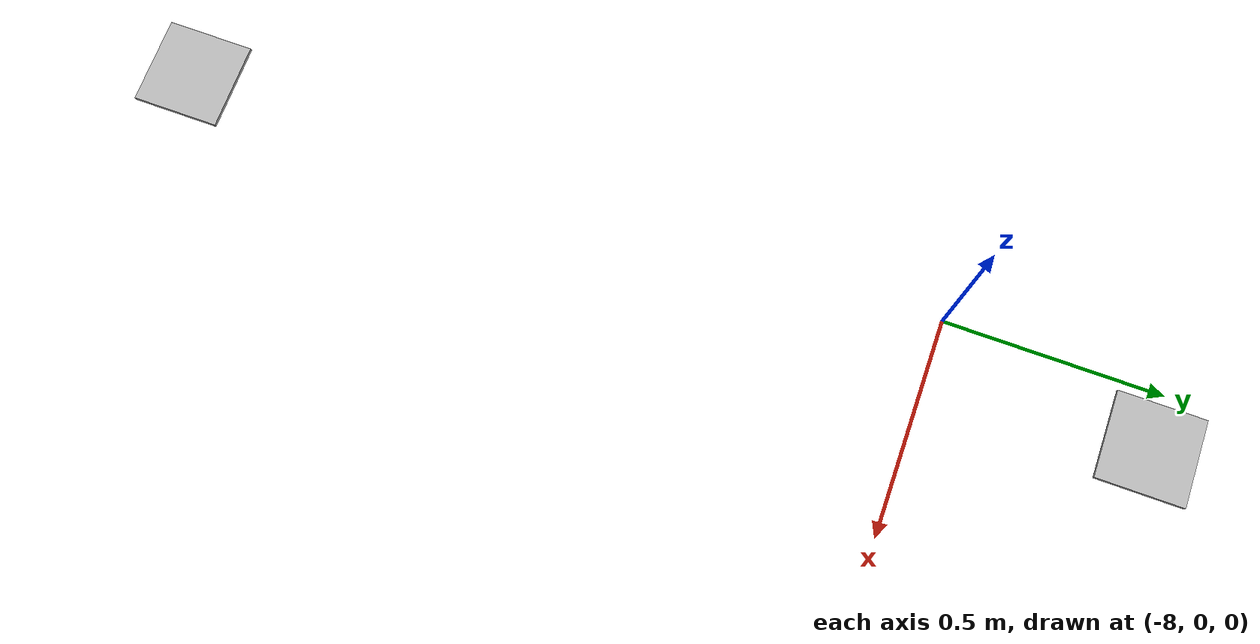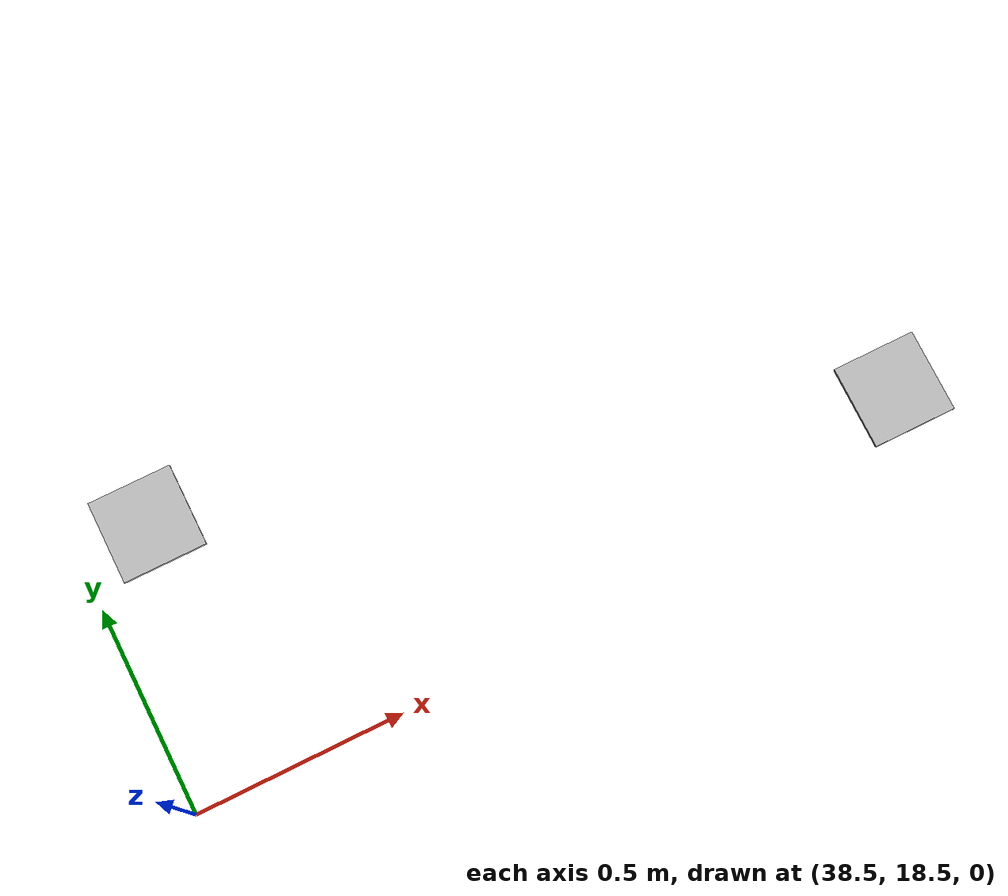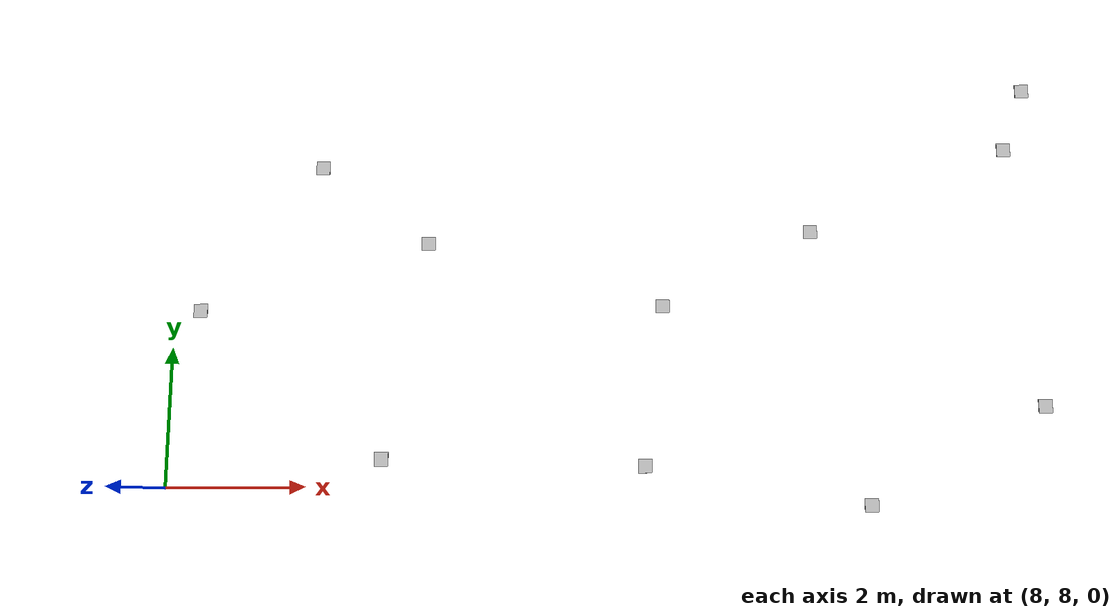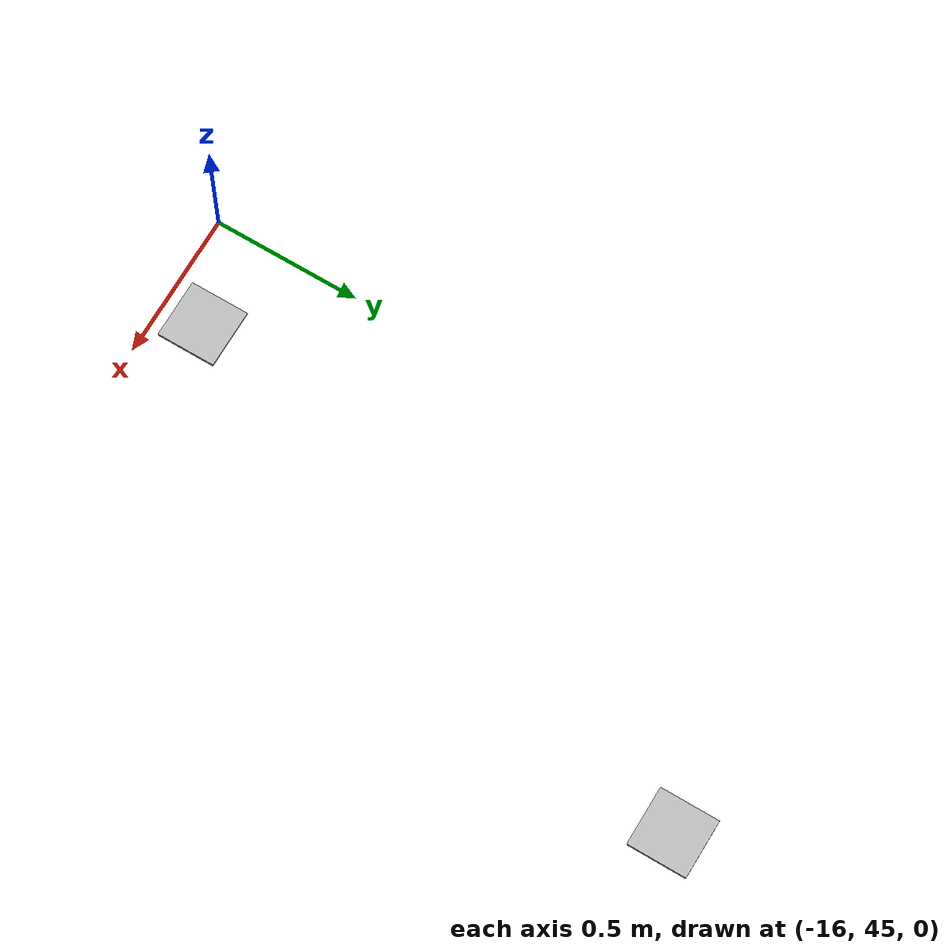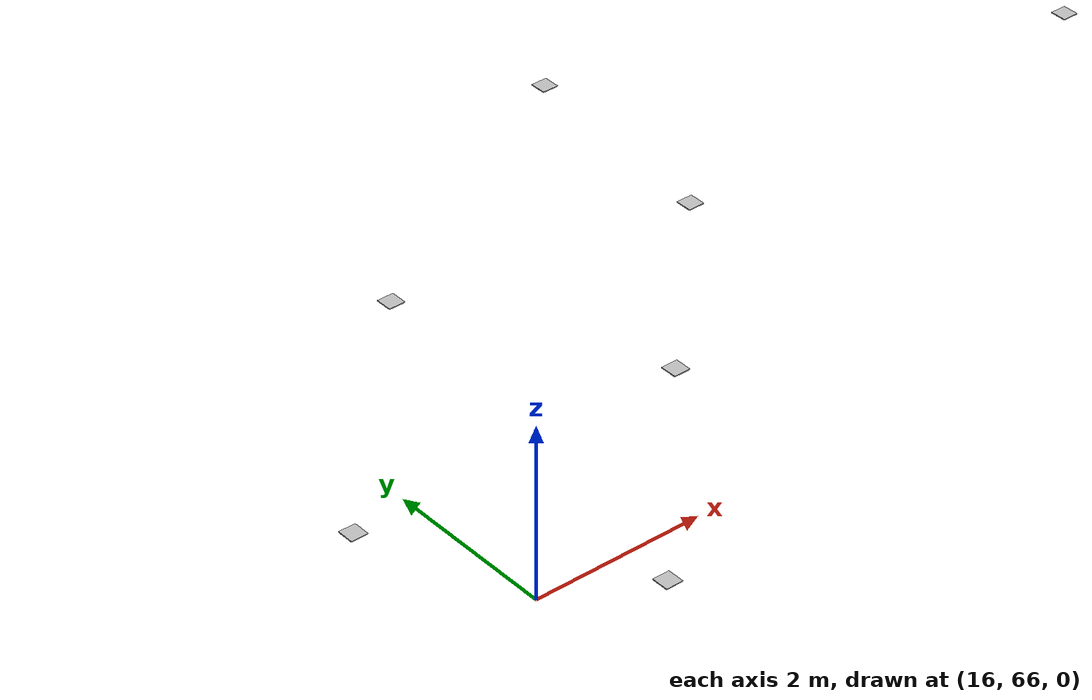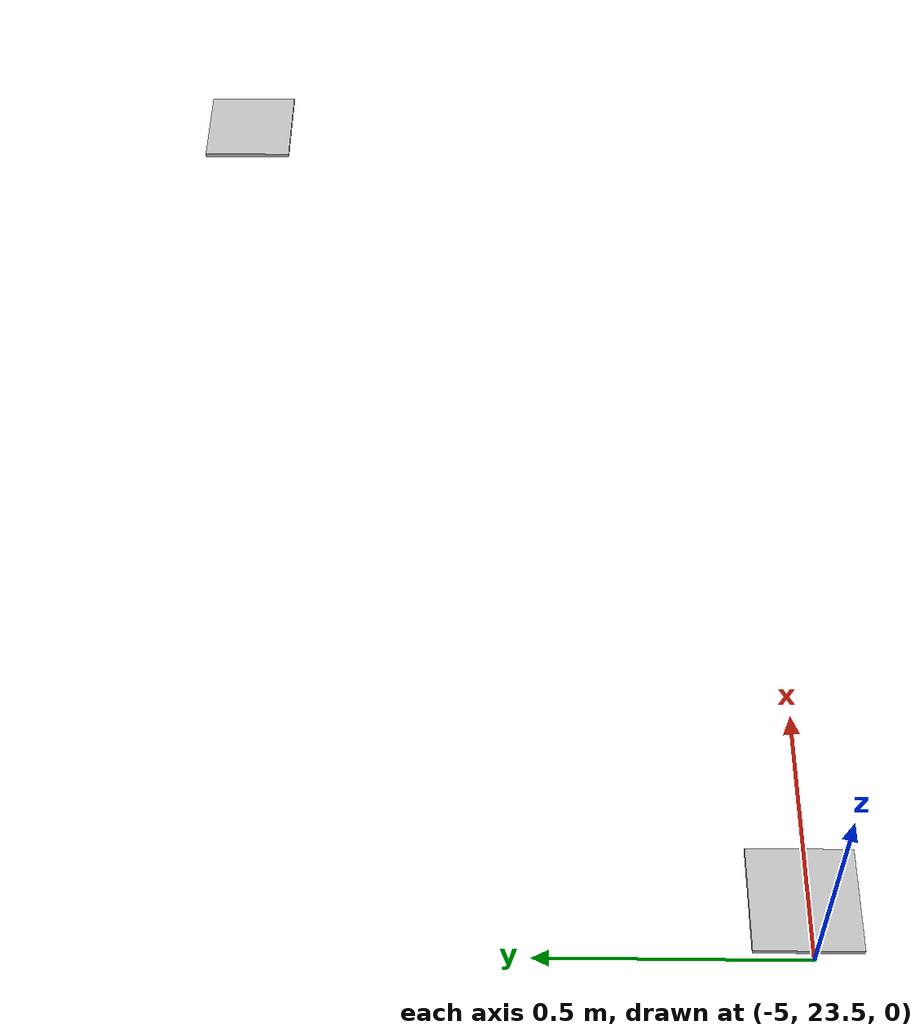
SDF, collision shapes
<?xml version='1.0' encoding='UTF-8'?>
<sdf version="1.4">
  <model name="some track">
    <include>
      <uri>model://cone_yellow</uri>
      <pose> 2.14752558488 -1.95879920991 0 0 0 0 </pose>
      <name>cone_right1</name>
    </include>
    <include>
      <uri>model://cone_yellow</uri>
      <pose> 8.70466154799 -1.18442140756 0 0 0 0 </pose>
      <name>cone_right2</name>
    </include>
    <include>
      <uri>model://cone_yellow</uri>
      <pose> 14.6183236383 -5.1441963569 0 0 0 0 </pose>
      <name>cone_right3</name>
    </include>
    <include>
      <uri>model://cone_orange_big</uri>
      <pose> 20.7241972479 -6.0391848532 0 0 0 0 </pose>
      <name>cone_right4</name>
    </include>
    <include>
      <uri>model://cone_orange_big</uri>
      <pose> 28.9193230976 -3.91924944367 0 0 0 0 </pose>
      <name>cone_right5</name>
    </include>
    <include>
      <uri>model://cone_orange_big</uri>
      <pose> 34.7780413262 0.742626041617 0 0 0 0 </pose>
      <name>cone_right6</name>
    </include>
    <include>
      <uri>model://cone_blue</uri>
      <pose> 37.8341101816 6.00322540441 0 0 0 0 </pose>
      <name>cone_right7</name>
    </include>
    <include>
      <uri>model://cone_yellow</uri>
      <pose> 39.7118587398 11.9762483558 0 0 0 0 </pose>
      <name>cone_right8</name>
    </include>
    <include>
      <uri>model://cone_orange_big</uri>
      <pose> 40.309533035 18.667046986 0 0 0 0 </pose>
      <name>cone_right9</name>
    </include>
    <include>
      <uri>model://cone_yellow</uri>
      <pose> 40.7349910373 25.1162348048 0 0 0 0 </pose>
      <name>cone_right10</name>
    </include>
    <include>
      <uri>model://cone_blue</uri>
      <pose> 41.3741862961 31.9370465258 0 0 0 0 </pose>
      <name>cone_right11</name>
    </include>
    <include>
      <uri>model://cone_orange_big</uri>
      <pose> 39.4746314509 37.8787380571 0 0 0 0 </pose>
      <name>cone_right12</name>
    </include>
    <include>
      <uri>model://cone_orange_big</uri>
      <pose> 39.9146148604 44.6159803761 0 0 0 0 </pose>
      <name>cone_right13</name>
    </include>
    <include>
      <uri>model://cone_orange_big</uri>
      <pose> 41.0817776628 51.1547194584 0 0 0 0 </pose>
      <name>cone_right14</name>
    </include>
    <include>
      <uri>model://cone_blue</uri>
      <pose> 40.8371452177 57.5531320044 0 0 0 0 </pose>
      <name>cone_right15</name>
    </include>
    <include>
      <uri>model://cone_orange_big</uri>
      <pose> 21.7776682189 72.8300112956 0 0 0 0 </pose>
      <name>cone_right16</name>
    </include>
    <include>
      <uri>model://cone_yellow</uri>
      <pose> 11.2439409435 55.5919557345 0 0 0 0 </pose>
      <name>cone_right17</name>
    </include>
    <include>
      <uri>model://cone_yellow</uri>
      <pose> 9.69314729012 49.2599493181 0 0 0 0 </pose>
      <name>cone_right18</name>
    </include>
    <include>
      <uri>model://cone_orange_big</uri>
      <pose> 12.4512070677 43.0660576433 0 0 0 0 </pose>
      <name>cone_right19</name>
    </include>
    <include>
      <uri>model://cone_blue</uri>
      <pose> 14.8735253067 37.2235520941 0 0 0 0 </pose>
      <name>cone_right20</name>
    </include>
    <include>
      <uri>model://cone_orange_big</uri>
      <pose> 17.9736761879 30.4263587171 0 0 0 0 </pose>
      <name>cone_right21</name>
    </include>
    <include>
      <uri>model://cone_blue</uri>
      <pose> 21.0406991395 25.9462275031 0 0 0 0 </pose>
      <name>cone_right22</name>
    </include>
    <include>
      <uri>model://cone_yellow</uri>
      <pose> 23.2829202582 20.6704561169 0 0 0 0 </pose>
      <name>cone_right23</name>
    </include>
    <include>
      <uri>model://cone_blue</uri>
      <pose> 6.93568510393 16.0015910614 0 0 0 0 </pose>
      <name>cone_right24</name>
    </include>
    <include>
      <uri>model://cone_orange_big</uri>
      <pose> 1.4957051688 19.3127427792 0 0 0 0 </pose>
      <name>cone_right25</name>
    </include>
    <include>
      <uri>model://cone_yellow</uri>
      <pose> -2.83512130893 24.6757331629 0 0 0 0 </pose>
      <name>cone_right26</name>
    </include>
    <include>
      <uri>model://cone_orange_big</uri>
      <pose> -3.74477766434 29.3139384938 0 0 0 0 </pose>
      <name>cone_right27</name>
    </include>
    <include>
      <uri>model://cone_yellow</uri>
      <pose> -6.49029235158 36.800248909 0 0 0 0 </pose>
      <name>cone_right28</name>
    </include>
    <include>
      <uri>model://cone_orange_big</uri>
      <pose> -9.75375917067 42.1784853118 0 0 0 0 </pose>
      <name>cone_right29</name>
    </include>
    <include>
      <uri>model://cone_blue</uri>
      <pose> -15.0314092558 47.1780140534 0 0 0 0 </pose>
      <name>cone_right30</name>
    </include>
    <include>
      <uri>model://cone_yellow</uri>
      <pose> -27.3817633399 44.5104473135 0 0 0 0 </pose>
      <name>cone_right31</name>
    </include>
    <include>
      <uri>model://cone_yellow</uri>
      <pose> -30.955250486 38.6445483898 0 0 0 0 </pose>
      <name>cone_right32</name>
    </include>
    <include>
      <uri>model://cone_yellow</uri>
      <pose> -32.3501607083 31.1334427442 0 0 0 0 </pose>
      <name>cone_right33</name>
    </include>
    <include>
      <uri>model://cone_yellow</uri>
      <pose> -31.6668079268 24.0262264174 0 0 0 0 </pose>
      <name>cone_right34</name>
    </include>
    <include>
      <uri>model://cone_blue</uri>
      <pose> -30.6411543581 17.2116515201 0 0 0 0 </pose>
      <name>cone_right35</name>
    </include>
    <include>
      <uri>model://cone_orange_big</uri>
      <pose> -27.4808779307 12.8032214898 0 0 0 0 </pose>
      <name>cone_right36</name>
    </include>
    <include>
      <uri>model://cone_yellow</uri>
      <pose> -25.2505453973 5.30504192603 0 0 0 0 </pose>
      <name>cone_right37</name>
    </include>
    <include>
      <uri>model://cone_orange_big</uri>
      <pose> -18.8172282636 1.06156822034 0 0 0 0 </pose>
      <name>cone_right38</name>
    </include>
    <include>
      <uri>model://cone_orange_big</uri>
      <pose> -13.2819498167 -0.762319106319 0 0 0 0 </pose>
      <name>cone_right39</name>
    </include>
    <include>
      <uri>model://cone_blue</uri>
      <pose> -2.13959116085 -2.63720338255 0 0 0 0 </pose>
      <name>cone_right40</name>
    </include>
    <include>
      <uri>model://cone_blue</uri>
      <pose> -7.9865656009 -1.79023470934 0 0 0 0 </pose>
      <name>cone_right41</name>
    </include>
    <include>
      <uri>model://cone_yellow</uri>
      <pose> 41.1262440137 62.0597110936 0 0 0 0 </pose>
      <name>cone_right42</name>
    </include>
    <include>
      <uri>model://cone_blue</uri>
      <pose> 37.9358278315 67.694702722 0 0 0 0 </pose>
      <name>cone_right43</name>
    </include>
    <include>
      <uri>model://cone_yellow</uri>
      <pose> 33.9565853912 70.5460156468 0 0 0 0 </pose>
      <name>cone_right44</name>
    </include>
    <include>
      <uri>model://cone_blue</uri>
      <pose> 31.1975130063 72.8072320468 0 0 0 0 </pose>
      <name>cone_right45</name>
    </include>
    <include>
      <uri>model://cone_blue</uri>
      <pose> 26.0239712956 74.7930847181 0 0 0 0 </pose>
      <name>cone_right46</name>
    </include>
    <include>
      <uri>model://cone_blue</uri>
      <pose> 17.9582845224 70.668791037 0 0 0 0 </pose>
      <name>cone_right47</name>
    </include>
    <include>
      <uri>model://cone_blue</uri>
      <pose> 15.3152907178 67.8878396391 0 0 0 0 </pose>
      <name>cone_right48</name>
    </include>
    <include>
      <uri>model://cone_yellow</uri>
      <pose> 22.3770022476 15.9451058925 0 0 0 0 </pose>
      <name>cone_right49</name>
    </include>
    <include>
      <uri>model://cone_orange_big</uri>
      <pose> 20.5874408175 13.8302838991 0 0 0 0 </pose>
      <name>cone_right50</name>
    </include>
    <include>
      <uri>model://cone_orange_big</uri>
      <pose> 20.2537986931 12.9087164936 0 0 0 0 </pose>
      <name>cone_right51</name>
    </include>
    <include>
      <uri>model://cone_blue</uri>
      <pose> 17.3153702486 11.6734780162 0 0 0 0 </pose>
      <name>cone_right52</name>
    </include>
    <include>
      <uri>model://cone_yellow</uri>
      <pose> 15.1175790255 10.5780435418 0 0 0 0 </pose>
      <name>cone_right53</name>
    </include>
    <include>
      <uri>model://cone_orange_big</uri>
      <pose> 11.6792129473 11.5354171553 0 0 0 0 </pose>
      <name>cone_right54</name>
    </include>
    <include>
      <uri>model://cone_orange_big</uri>
      <pose> 10.0829616606 12.6959064448 0 0 0 0 </pose>
      <name>cone_right55</name>
    </include>
    <include>
      <uri>model://cone_blue</uri>
      <pose> -19.062988388 48.0595656915 0 0 0 0 </pose>
      <name>cone_right56</name>
    </include>
    <include>
      <uri>model://cone_orange_big</uri>
      <pose> -22.184112267 49.667781522 0 0 0 0 </pose>
      <name>cone_right57</name>
    </include>
    <include>
      <uri>model://cone_orange_big</uri>
      <pose> -26.5019070423 47.4621693767 0 0 0 0 </pose>
      <name>cone_right58</name>
    </include>
    <include>
      <uri>model://cone_orange_big</uri>
      <pose> 11.1781089448 61.7577269029 0 0 0 0 </pose>
      <name>cone_right59</name>
    </include>
    <include>
      <uri>model://cone_blue</uri>
      <pose> 2.0969216671 1.57063286787 0 0 0 0 </pose>
      <name>cone_left1</name>
    </include>
    <include>
      <uri>model://cone_yellow</uri>
      <pose> 9.9142088359 0.844260907066 0 0 0 0 </pose>
      <name>cone_left2</name>
    </include>
    <include>
      <uri>model://cone_yellow</uri>
      <pose> 16.438440333 -2.40863691969 0 0 0 0 </pose>
      <name>cone_left3</name>
    </include>
    <include>
      <uri>model://cone_orange_big</uri>
      <pose> 21.5149183991 -3.6588483622 0 0 0 0 </pose>
      <name>cone_left4</name>
    </include>
    <include>
      <uri>model://cone_yellow</uri>
      <pose> 27.1899092102 -1.43279429808 0 0 0 0 </pose>
      <name>cone_left5</name>
    </include>
    <include>
      <uri>model://cone_yellow</uri>
      <pose> 31.9883355591 2.17216913086 0 0 0 0 </pose>
      <name>cone_left6</name>
    </include>
    <include>
      <uri>model://cone_blue</uri>
      <pose> 34.417124031 7.09127706037 0 0 0 0 </pose>
      <name>cone_left7</name>
    </include>
    <include>
      <uri>model://cone_blue</uri>
      <pose> 36.6554234008 11.9399008831 0 0 0 0 </pose>
      <name>cone_left8</name>
    </include>
    <include>
      <uri>model://cone_blue</uri>
      <pose> 38.6682787425 19.1336347051 0 0 0 0 </pose>
      <name>cone_left9</name>
    </include>
    <include>
      <uri>model://cone_orange_big</uri>
      <pose> 37.4570860839 24.7995092695 0 0 0 0 </pose>
      <name>cone_left10</name>
    </include>
    <include>
      <uri>model://cone_blue</uri>
      <pose> 37.0160013512 30.8270620182 0 0 0 0 </pose>
      <name>cone_left11</name>
    </include>
    <include>
      <uri>model://cone_orange_big</uri>
      <pose> 36.1927210437 37.271273496 0 0 0 0 </pose>
      <name>cone_left12</name>
    </include>
    <include>
      <uri>model://cone_yellow</uri>
      <pose> 37.1617014974 44.4195457156 0 0 0 0 </pose>
      <name>cone_left13</name>
    </include>
    <include>
      <uri>model://cone_blue</uri>
      <pose> 39.0483313893 51.9812944024 0 0 0 0 </pose>
      <name>cone_left14</name>
    </include>
    <include>
      <uri>model://cone_yellow</uri>
      <pose> 39.0295059219 56.396658293 0 0 0 0 </pose>
      <name>cone_left15</name>
    </include>
    <include>
      <uri>model://cone_blue</uri>
      <pose> 21.4837639333 70.0937492622 0 0 0 0 </pose>
      <name>cone_left16</name>
    </include>
    <include>
      <uri>model://cone_orange_big</uri>
      <pose> 14.9226648513 54.5438908591 0 0 0 0 </pose>
      <name>cone_left17</name>
    </include>
    <include>
      <uri>model://cone_orange_big</uri>
      <pose> 14.1641179848 49.3809566391 0 0 0 0 </pose>
      <name>cone_left18</name>
    </include>
    <include>
      <uri>model://cone_orange_big</uri>
      <pose> 14.9554858681 44.2029662464 0 0 0 0 </pose>
      <name>cone_left19</name>
    </include>
    <include>
      <uri>model://cone_orange_big</uri>
      <pose> 16.7609283725 37.6731443274 0 0 0 0 </pose>
      <name>cone_left20</name>
    </include>
    <include>
      <uri>model://cone_blue</uri>
      <pose> 22.0220242863 33.6228747042 0 0 0 0 </pose>
      <name>cone_left21</name>
    </include>
    <include>
      <uri>model://cone_blue</uri>
      <pose> 24.531546466 26.4889030976 0 0 0 0 </pose>
      <name>cone_left22</name>
    </include>
    <include>
      <uri>model://cone_yellow</uri>
      <pose> 26.0430723189 19.3123492883 0 0 0 0 </pose>
      <name>cone_left23</name>
    </include>
    <include>
      <uri>model://cone_blue</uri>
      <pose> 4.64639628904 13.5191455902 0 0 0 0 </pose>
      <name>cone_left24</name>
    </include>
    <include>
      <uri>model://cone_orange_big</uri>
      <pose> 0.0171125717523 16.690294604 0 0 0 0 </pose>
      <name>cone_left25</name>
    </include>
    <include>
      <uri>model://cone_orange_big</uri>
      <pose> -4.88388094342 23.507795021 0 0 0 0 </pose>
      <name>cone_left26</name>
    </include>
    <include>
      <uri>model://cone_blue</uri>
      <pose> -6.70249625334 28.3604280892 0 0 0 0 </pose>
      <name>cone_left27</name>
    </include>
    <include>
      <uri>model://cone_orange_big</uri>
      <pose> -8.51547492948 34.9248320642 0 0 0 0 </pose>
      <name>cone_left28</name>
    </include>
    <include>
      <uri>model://cone_orange_big</uri>
      <pose> -11.6547534465 41.1519487266 0 0 0 0 </pose>
      <name>cone_left29</name>
    </include>
    <include>
      <uri>model://cone_orange_big</uri>
      <pose> -15.6852608447 45.1378785414 0 0 0 0 </pose>
      <name>cone_left30</name>
    </include>
    <include>
      <uri>model://cone_orange_big</uri>
      <pose> -24.4773685275 42.3240419643 0 0 0 0 </pose>
      <name>cone_left31</name>
    </include>
    <include>
      <uri>model://cone_orange_big</uri>
      <pose> -27.2829125703 36.6092999482 0 0 0 0 </pose>
      <name>cone_left32</name>
    </include>
    <include>
      <uri>model://cone_yellow</uri>
      <pose> -27.9728415663 30.811867074 0 0 0 0 </pose>
      <name>cone_left33</name>
    </include>
    <include>
      <uri>model://cone_yellow</uri>
      <pose> -28.0305793736 25.7281424044 0 0 0 0 </pose>
      <name>cone_left34</name>
    </include>
    <include>
      <uri>model://cone_yellow</uri>
      <pose> -27.3431321209 19.7987656503 0 0 0 0 </pose>
      <name>cone_left35</name>
    </include>
    <include>
      <uri>model://cone_yellow</uri>
      <pose> -25.3408548545 13.745741284 0 0 0 0 </pose>
      <name>cone_left36</name>
    </include>
    <include>
      <uri>model://cone_blue</uri>
      <pose> -21.0123561763 7.10214897128 0 0 0 0 </pose>
      <name>cone_left37</name>
    </include>
    <include>
      <uri>model://cone_blue</uri>
      <pose> -17.5120983373 4.56773259569 0 0 0 0 </pose>
      <name>cone_left38</name>
    </include>
    <include>
      <uri>model://cone_orange_big</uri>
      <pose> -13.250013428 1.90283342673 0 0 0 0 </pose>
      <name>cone_left39</name>
    </include>
    <include>
      <uri>model://cone_blue</uri>
      <pose> -3.05611182862 2.85504113521 0 0 0 0 </pose>
      <name>cone_left40</name>
    </include>
    <include>
      <uri>model://cone_orange_big</uri>
      <pose> -7.87936294969 0.499717020775 0 0 0 0 </pose>
      <name>cone_left41</name>
    </include>
    <include>
      <uri>model://cone_yellow</uri>
      <pose> 38.0968961713 62.0081204656 0 0 0 0 </pose>
      <name>cone_left42</name>
    </include>
    <include>
      <uri>model://cone_yellow</uri>
      <pose> 35.448348492 64.2958898328 0 0 0 0 </pose>
      <name>cone_left43</name>
    </include>
    <include>
      <uri>model://cone_blue</uri>
      <pose> 32.9277299665 67.8226814373 0 0 0 0 </pose>
      <name>cone_left44</name>
    </include>
    <include>
      <uri>model://cone_blue</uri>
      <pose> 28.6266695471 69.1873265636 0 0 0 0 </pose>
      <name>cone_left45</name>
    </include>
    <include>
      <uri>model://cone_orange_big</uri>
      <pose> 27.1931260648 70.3030842485 0 0 0 0 </pose>
      <name>cone_left46</name>
    </include>
    <include>
      <uri>model://cone_yellow</uri>
      <pose> 19.4167765756 67.9518622038 0 0 0 0 </pose>
      <name>cone_left47</name>
    </include>
    <include>
      <uri>model://cone_blue</uri>
      <pose> 17.1344342808 65.4453607394 0 0 0 0 </pose>
      <name>cone_left48</name>
    </include>
    <include>
      <uri>model://cone_blue</uri>
      <pose> 26.7157030833 15.5757852063 0 0 0 0 </pose>
      <name>cone_left49</name>
    </include>
    <include>
      <uri>model://cone_blue</uri>
      <pose> 24.5817424724 12.2616199491 0 0 0 0 </pose>
      <name>cone_left50</name>
    </include>
    <include>
      <uri>model://cone_blue</uri>
      <pose> 20.6151467989 9.08062631944 0 0 0 0 </pose>
      <name>cone_left51</name>
    </include>
    <include>
      <uri>model://cone_orange_big</uri>
      <pose> 18.0508921546 7.69358966685 0 0 0 0 </pose>
      <name>cone_left52</name>
    </include>
    <include>
      <uri>model://cone_blue</uri>
      <pose> 14.8403203492 8.26662613974 0 0 0 0 </pose>
      <name>cone_left53</name>
    </include>
    <include>
      <uri>model://cone_blue</uri>
      <pose> 11.0638268025 8.3872272732 0 0 0 0 </pose>
      <name>cone_left54</name>
    </include>
    <include>
      <uri>model://cone_yellow</uri>
      <pose> 8.36682569363 10.5538858544 0 0 0 0 </pose>
      <name>cone_left55</name>
    </include>
    <include>
      <uri>model://cone_orange_big</uri>
      <pose> -18.4084489429 45.0951573916 0 0 0 0 </pose>
      <name>cone_left56</name>
    </include>
    <include>
      <uri>model://cone_orange_big</uri>
      <pose> -22.0666101762 44.9818310536 0 0 0 0 </pose>
      <name>cone_left57</name>
    </include>
    <include>
      <uri>model://cone_orange_big</uri>
      <pose> 15.1943128239 59.8260891827 0 0 0 0 </pose>
      <name>cone_left58</name>
    </include>
  </model>
</sdf>

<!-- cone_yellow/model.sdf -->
<sdf version='1.4'>
  <model name="cone_yellow">
    <link name="link">
    <collision name="collision"><geometry><box><size> 0.2 0.2 0.01</size>
             </box></geometry></collision>
      <visual name="visual">
        <geometry>
          <mesh>
            <uri>model://YellowCone.dae</uri>
            <scale>1 1 1</scale>
          </mesh>
        </geometry>
        <material>
            <script>
              <uri>model://cone_yellow/materials/scripts</uri>
              <uri>model://cone_yellow/materials/textures</uri>
              <name>cone_yellow/Image</name>
            </script>
        </material>
      </visual>
    </link>
  </model>
</sdf>

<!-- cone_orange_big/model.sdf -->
<sdf version='1.4'>
  <model name="cone_orange_big">
    <link name="link">
    <collision name="collision"><geometry><box><size> 0.2 0.2 0.01</size>
             </box></geometry></collision>
      <visual name="visual">
        <geometry>
          <mesh>
            <uri>model://BigOrangeCone.dae</uri>
            <scale>1 1 1</scale>
          </mesh>
        </geometry>
        <material>
            <script>
              <uri>model://cone_orange_big/materials/scripts</uri>
              <uri>model://cone_orange_big/materials/textures</uri>
              <name>cone_orange_big/Image</name>
            </script>
        </material>
      </visual>
    </link>
  </model>
</sdf>

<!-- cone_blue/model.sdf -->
<sdf version='1.4'>
  <model name="cone_blue">
    <link name="link">
    <collision name="collision"><geometry><box><size> 0.2 0.2 0.01</size>
             </box></geometry></collision>
      <visual name="visual">
        <geometry>
          <mesh>
            <uri>model://BlueCone.dae</uri>
            <scale>1 1 1</scale>
          </mesh>
        </geometry>
        <material>
            <script>
              <uri>model://cone_blue/materials/scripts</uri>
              <uri>model://cone_blue/materials/textures</uri>
              <name>cone_blue/Image</name>
            </script>
        </material>
      </visual>
    </link>
  </model>
</sdf>
